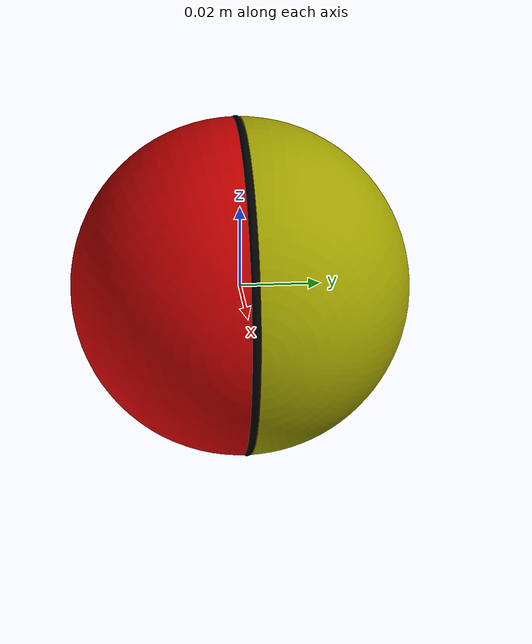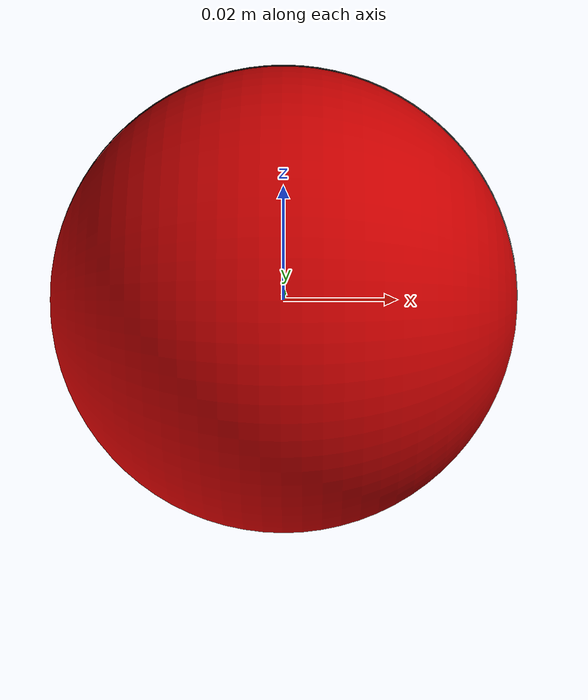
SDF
<?xml version="1.0" ?>
<sdf version="1.4">
  <model name="weazelball">
    <link name="shell">
      <self_collide>false</self_collide>
      <inertial>
        <pose>0 0 0 0 0 0</pose>
        <inertia>
          <ixx>0.0000497901</ixx>
          <ixy>-0.0000000437</ixy>
          <ixz>0.0000000021</ixz>
          <iyy>0.0000531742</iyy>
          <iyz>0.0000000036</iyz>
          <izz>0.0000498265</izz>
        </inertia>
        <mass>0.0489</mass>
      </inertial>
      <visual name="shell_geom_visual1">
        <pose>0 0 0 0 0 0</pose>
        <geometry>
          <mesh>
            <uri>model://weazelball/meshes/visual/wb-shell-fixedhemi.dae</uri>
          </mesh>
        </geometry>
      </visual>
      <visual name="shell_geom_visual2">
        <pose>0 0 0 0 0 0</pose>
        <geometry>
          <mesh>
            <uri>model://weazelball/meshes/visual/wb-shell-freehemi.dae</uri>
          </mesh>
        </geometry>
      </visual>
      <visual name="shell_geom_visual3">
        <pose>0 0 0 0 0 0</pose>
        <geometry>
          <mesh>
            <uri>model://weazelball/meshes/visual/wb-shell-oring.dae</uri>
          </mesh>
        </geometry>
      </visual>
      <collision name="base_geom_collision">
        <pose>0 0 0 0 0 0</pose>
        <geometry>
          <sphere>
            <radius>0.041</radius>
          </sphere>
        </geometry>
        <surface>
          <friction>
            <ode>
              <mu>0.5</mu>
              <mu2>0.5</mu2>
              <fdir1>0 0 0</fdir1>
              <slip1>0.0</slip1>
              <slip2>0.0</slip2>
            </ode>
            <bullet>
              <friction>1</friction>
              <friction2>1</friction2>
              <fdir1>0 0 0</fdir1>
              <rolling_friction>1</rolling_friction>
            </bullet>
          </friction>
        </surface>
      </collision>
    </link>
    <link name="motor">
      <self_collide>false</self_collide>
      <inertial>
        <pose>-0.01656 0.00141 -0.00170 0 0 0</pose>
<!-- Taken at center of mass and aligned with origin -->
        <inertia>
          <ixx>0.00002191279</ixx>
          <ixy>0.00000232259</ixy>
          <ixz>-0.00000120945</ixz>
          <iyy>0.00002143758</iyy>
          <iyz>0.00000043107</iyz>
          <izz>0.00002578811</izz>
        </inertia>
        <mass>0.0864</mass>
      </inertial>
      <visual name="motor_geom_visual1">
        <pose>0 0 0 0 0 0</pose>
        <geometry>
          <mesh>
            <uri>model://weazelball/meshes/visual/wb-bob-housing.dae</uri>
          </mesh>
        </geometry>
      </visual>
      <visual name="motor_geom_visual2">
        <pose>0 0 0 0 0 0</pose>
        <geometry>
          <mesh>
            <uri>model://weazelball/meshes/visual/wb-bob-cw.dae</uri>
          </mesh>
        </geometry>
      </visual>
    </link>
    <joint name="motor_actuator" type="revolute">
      <parent>shell</parent>
      <child>motor</child>
      <axis>
        <dynamics>
          <damping>0.0</damping>
          <friction>0.0</friction>
        </dynamics>
        <xyz>0 1 0</xyz>
      </axis>
    </joint>
    <plugin name='simulation-controller' filename='libsimulation-controller.so'>
    </plugin>
  </model>
</sdf>
